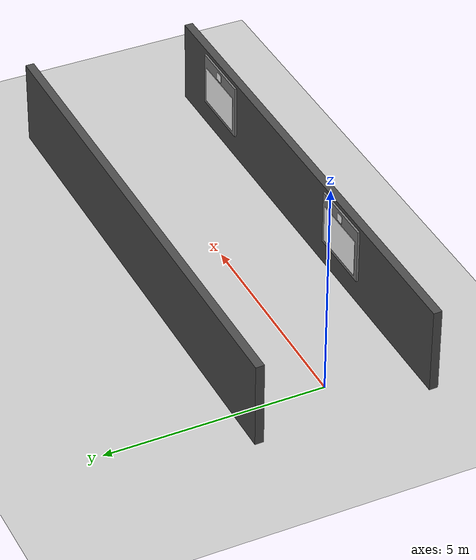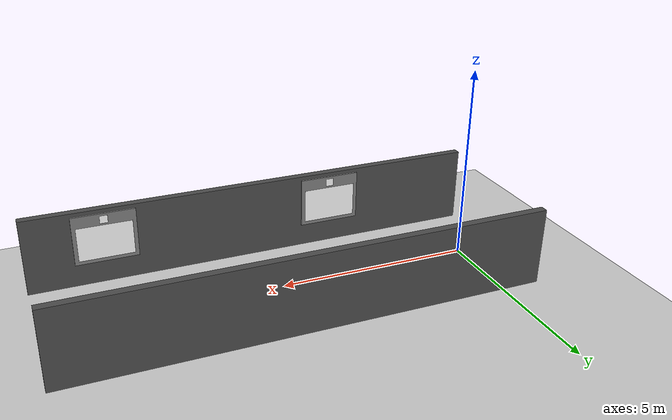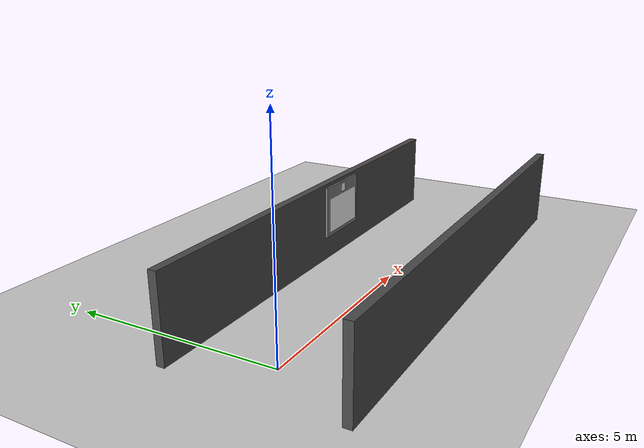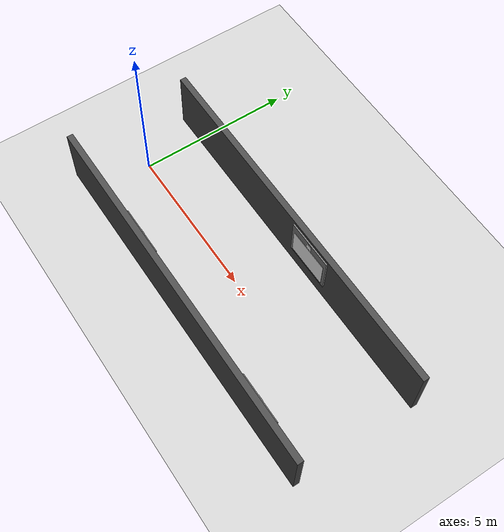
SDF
<?xml version="1.0" ?>
<sdf version="1.8">
  <world name="itu_corridor">
    <physics name="1ms" type="ignored"><max_step_size>0.001</max_step_size><real_time_factor>1.0</real_time_factor></physics>
    <plugin filename="gz-sim-physics-system" name="gz::sim::systems::Physics"></plugin>
    <plugin filename="gz-sim-sensors-system" name="gz::sim::systems::Sensors"><render_engine>ogre</render_engine></plugin>
    <plugin filename="gz-sim-scene-broadcaster-system" name="gz::sim::systems::SceneBroadcaster"></plugin>
    <plugin filename="gz-sim-user-commands-system" name="gz::sim::systems::UserCommands"></plugin>

    <light type="directional" name="sun"><cast_shadows>true</cast_shadows><pose>0 0 10 0 0 0</pose><diffuse>0.8 0.8 0.8 1</diffuse><direction>-0.5 0.1 -0.9</direction></light>

    <!-- Extra ambient light -->
    <light type="point" name="ambient_light">
      <pose>5 0 5 0 0 0</pose>
      <diffuse>0.9 0.9 0.9 1</diffuse>
      <specular>0.5 0.5 0.5 1</specular>
      <attenuation>
        <range>50</range>
        <linear>0.01</linear>
        <constant>0.5</constant>
      </attenuation>
      <cast_shadows>false</cast_shadows>
    </light>

    <model name="ground"><static>true</static><link name="link"><visual name="v"><geometry><plane><normal>0 0 1</normal><size>100 100</size></plane></geometry><material><ambient>0.8 0.8 0.8 1</ambient></material></visual><collision name="c"><geometry><plane><normal>0 0 1</normal></plane></geometry></collision></link></model>

    <model name="wall_left"><static>true</static><pose>5 2 1 0 0 0</pose><link name="link"><visual name="v"><geometry><box><size>12 0.2 2</size></box></geometry><material><ambient>0.3 0.3 0.3 1</ambient></material></visual><collision name="c"><geometry><box><size>12 0.2 2</size></box></geometry></collision></link></model>
    <model name="wall_right"><static>true</static><pose>5 -2 1 0 0 0</pose><link name="link"><visual name="v"><geometry><box><size>12 0.2 2</size></box></geometry><material><ambient>0.3 0.3 0.3 1</ambient></material></visual><collision name="c"><geometry><box><size>12 0.2 2</size></box></geometry></collision></link></model>

    <!-- PANO (Mavi Çerçeveli + Hizalı) -->
    <!-- PANO (ArUco Markerlı + Gri Çerçeve) -->
    <include>
      <uri>model://poster_board</uri>
      <name>noticeboard_1</name>
      <!-- Duvarin dibine: y=-2, poster kalinigi ~0.1, bu yuzden -1.9 -->
      <!-- Donuk: 1.57 (90 derece, sola bakiyor, yani -Y duvarindan +Y tarafina bakiyor) -->
      <pose>3 -1.9 1.25 0 0 1.57</pose>
    </include>

    <include>
      <uri>model://poster_board</uri>
      <name>noticeboard_2</name>
      <!-- Karsi duvar: y=2, donuk -1.57 (270 veya -90 derece, saga bakiyor) -->
      <pose>6 1.9 1.25 0 0 -1.57</pose>
    </include>

    <include>
      <uri>model://poster_board</uri>
      <name>noticeboard_3</name>
      <!-- Tekrar sol duvar: y=-2 -->
      <pose>9 -1.9 1.25 0 0 1.57</pose>
    </include>

  </world>
</sdf>

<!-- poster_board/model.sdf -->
<sdf version="1.8">
  <model name="poster_board">
    <static>true</static>
    <link name="link">
      <!-- Çerçeve (Gri Renk) -->
      <visual name="frame">
        <geometry>
          <box>
            <size>0.1 1.6 1.3</size>
          </box>
        </geometry>
        <material>
          <ambient>0.5 0.5 0.5 1</ambient>
          <diffuse>0.5 0.5 0.5 1</diffuse>
        </material>
      </visual>

      <!-- Poster İçeriği -->
      <visual name="poster">
        <pose>0.06 0 -0.1 0 0 0</pose> <!-- Biraz aşağı kaydırdık -->
        <geometry>
          <box>
            <size>0.01 1.4 0.9</size> <!-- Yüksekliği azalttık -->
          </box>
        </geometry>
        <material>
          <ambient>1 1 1 1</ambient>
          <diffuse>1 1 1 1</diffuse>
          <pbr>
            <metal>
              <albedo_map>materials/textures/poster.png</albedo_map>
            </metal>
          </pbr>
        </material>
      </visual>

      <!-- ArUco Marker (Tepeye) -->
      <visual name="aruco_marker">
        <pose>0.065 0 0.5 0 0 0</pose> <!-- Çerçevenin üst kısmına yakın -->
        <geometry>
          <box>
            <size>0.01 0.2 0.2</size> <!-- 20cm x 20cm Marker -->
          </box>
        </geometry>
        <material>
          <ambient>1 1 1 1</ambient>
          <diffuse>1 1 1 1</diffuse>
          <pbr>
            <metal>
              <albedo_map>materials/textures/aruco_marker.png</albedo_map>
            </metal>
          </pbr>
        </material>
      </visual>

      <!-- Collision -->
       <collision name="collision">
        <geometry>
          <box>
            <size>0.1 1.6 1.3</size>
          </box>
        </geometry>
      </collision>
    </link>
  </model>
</sdf>
